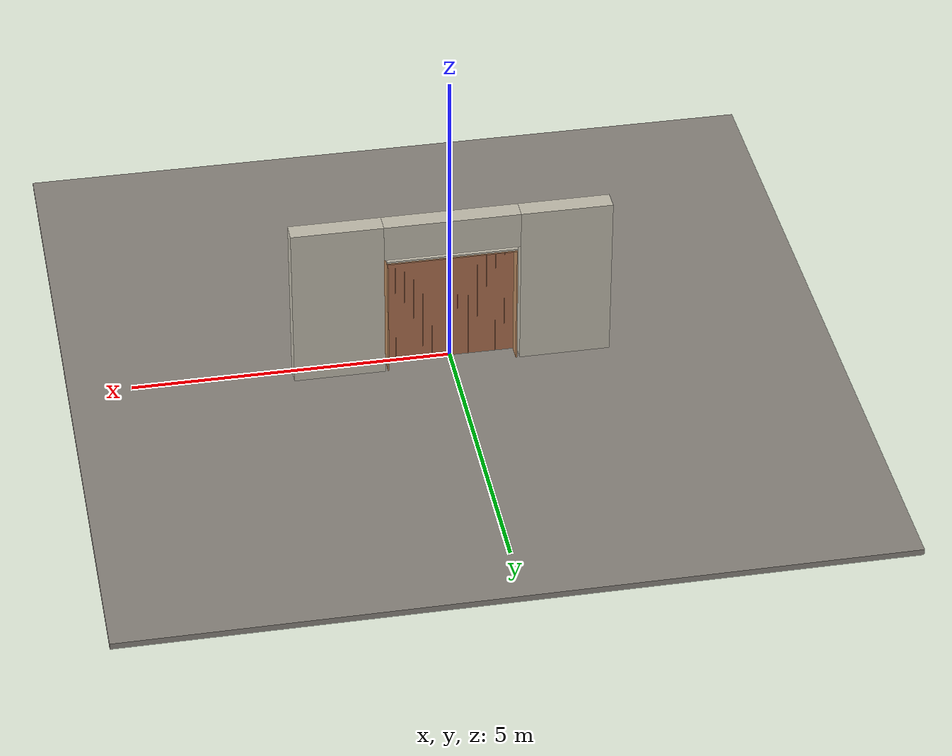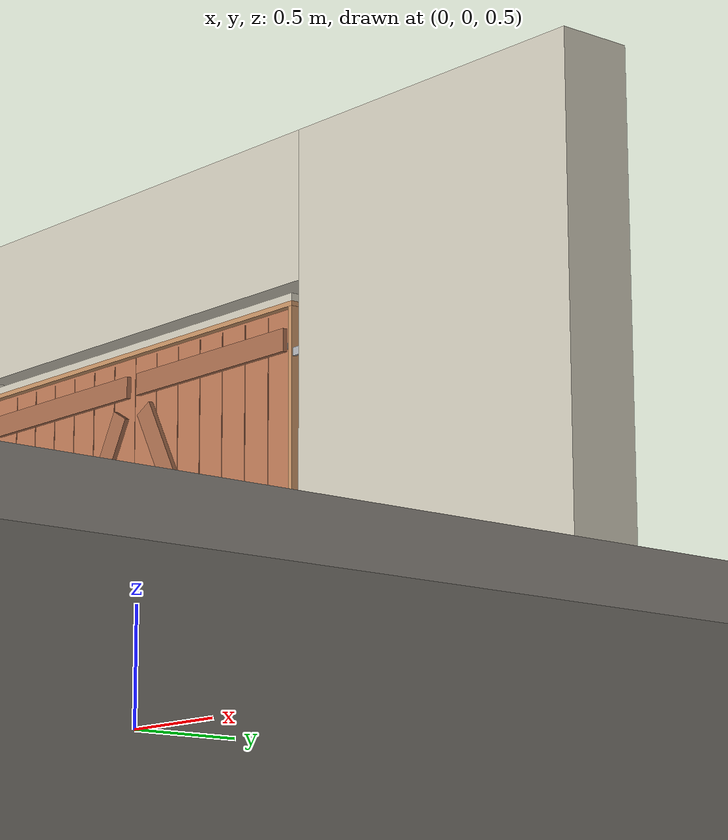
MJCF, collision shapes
<?xml version="1.0" ?>
<mujoco model="db0144_swing_double_full">
  <compiler angle="radian" meshdir="../../hardware" texturedir="../../textures" autolimits="true" inertiafromgeom="false"/>
  <option timestep="0.002" integrator="implicitfast" cone="elliptic" impratio="10" noslip_iterations="3">
    <flag multiccd="enable"/>
  </option>
  <size memory="16M"/>
  <default>
    <geom condim="4" solref="0.005 1" solimp="0.95 0.99 0.001"/>
    <joint solreflimit="0.005 1" solimplimit="0.95 0.99 0.001"/>
    <tendon solreflimit="0.005 1"/>
    <equality solref="0.002 1"/>
  </default>
  <visual>
    <headlight ambient="0.4 0.4 0.4" diffuse="0.7 0.7 0.7" specular="0.2 0.2 0.2"/>
    <quality shadowsize="4096"/>
    <map znear="0.01" zfar="60"/>
  </visual>
  <asset>
    <mesh name="pull_2b47e55ff8" file="pull_2b47e55ff8.obj"/>
    <mesh name="strap_hinge_78d1bbb966" file="strap_hinge_78d1bbb966.obj"/>
    <material name="mat_floor" rgba="0.55 0.53 0.5 1" specular="0.2" shininess="0.15" reflectance="0"/>
    <material name="mat_wall" rgba="0.78 0.76 0.7 1" specular="0.2" shininess="0.1" reflectance="0"/>
    <material name="mat_leaf_a" rgba="0.7 0.45 0.32 1" specular="0.2" shininess="0.4" reflectance="0"/>
    <material name="mat_leaf_a_brace" rgba="0.63 0.405 0.288 1" specular="0.2" shininess="0.2" reflectance="0"/>
    <material name="mat_hinge" rgba="0.65 0.66 0.68 1" specular="0.74" shininess="0.5" reflectance="0.36"/>
    <material name="mat_op_black_matte_metal" rgba="0.05 0.05 0.05 1" specular="0.38" shininess="0.3" reflectance="0.12"/>
    <material name="mat_leaf_b" rgba="0.7 0.45 0.32 1" specular="0.2" shininess="0.4" reflectance="0"/>
    <material name="mat_leaf_b_brace" rgba="0.63 0.405 0.288 1" specular="0.2" shininess="0.2" reflectance="0"/>
    <material name="mat_frame" rgba="0.75 0.55 0.38 1" specular="0.2" shininess="0.45" reflectance="0"/>
    <texture name="skybox" type="skybox" builtin="gradient" rgb1="0.6 0.7 0.85" rgb2="0.9 0.92 0.95" width="256" height="256"/>
  </asset>
  <worldbody>
    <light name="sun" pos="1.5 -2.5 4" dir="-0.3 0.5 -0.8" directional="true" diffuse="0.8 0.8 0.8" specular="0.3 0.3 0.3" castshadow="true"/>
    <light name="fill" pos="-1.5 2.5 3" dir="0.3 -0.5 -0.7" directional="true" diffuse="0.35 0.35 0.4" castshadow="false"/>
    <camera name="robot_view" pos="0 -2.404187 1.709912" xyaxes="1 0 0 0 0.26963 0.962964" fovy="52"/>
    <camera name="far_view" pos="0 2.620188 1.709912" xyaxes="-1 0 0 0 -0.26963 0.962964" fovy="52"/>
    <camera name="iso" pos="-1.909262 -2.002238 2.111862" xyaxes="0.741536 -0.670913 0 0.242917 0.268487 0.932151" fovy="46"/>
    <camera name="detail_handle" pos="0.0735 -0.867 1.33" xyaxes="0.97561 0.219512 0 -0.070934 0.315262 0.94635" fovy="38"/>
    <geom name="floor" type="box" size="6 6 0.05" pos="0 0 -0.05" material="mat_floor" group="0" contype="1" conaffinity="1" friction="0.8 0.005 0.0001" density="2400"/>
    <geom name="wall_left" type="box" size="0.71775 0.15 1.35" pos="-1.78225 0.108 1.35" material="mat_wall" group="0" contype="1" conaffinity="1" friction="0.6 0.005 0.0001" density="800"/>
    <geom name="wall_right" type="box" size="0.71775 0.15 1.35" pos="1.78225 0.108 1.35" material="mat_wall" group="0" contype="1" conaffinity="1" friction="0.6 0.005 0.0001" density="800"/>
    <geom name="wall_header" type="box" size="1.0645 0.15 0.2985" pos="0 0.108 2.4015" material="mat_wall" group="0" contype="1" conaffinity="1" friction="0.6 0.005 0.0001" density="800"/>
    <geom name="hinge_pintle_0" type="cylinder" size="0.008 0.02" pos="-1.0015 -0.029 0.133" material="mat_hinge" group="1" contype="0" conaffinity="0" density="7850"/>
    <geom name="hinge_pintle_1" type="cylinder" size="0.008 0.02" pos="-1.0015 -0.029 1.833" material="mat_hinge" group="1" contype="0" conaffinity="0" density="7850"/>
    <geom name="hinge_pintle_0_2" type="cylinder" size="0.008 0.02" pos="1.0015 -0.029 0.133" material="mat_hinge" group="1" contype="0" conaffinity="0" density="7850"/>
    <geom name="hinge_pintle_1_2" type="cylinder" size="0.008 0.02" pos="1.0015 -0.029 1.833" material="mat_hinge" group="1" contype="0" conaffinity="0" density="7850"/>
    <geom name="jamb_l" type="box" size="0.0095 0.15 1.0065" pos="-1.014 0.108 1.0065" material="mat_frame" group="0" contype="1" conaffinity="1" friction="0.6 0.005 0.0001" density="300"/>
    <geom name="jamb_r" type="box" size="0.0095 0.15 1.0065" pos="1.014 0.108 1.0065" material="mat_frame" group="0" contype="1" conaffinity="1" friction="0.6 0.005 0.0001" density="300"/>
    <geom name="jamb_head" type="box" size="1.0235 0.15 0.0095" pos="0 0.108 2.0225" material="mat_frame" group="0" contype="1" conaffinity="1" friction="0.6 0.005 0.0001" density="300"/>
    <geom name="head_stud" type="box" size="1.0235 0.15 0.015" pos="0 0.108 2.047" material="mat_wall" group="0" contype="1" conaffinity="1" friction="0.6 0.005 0.0001" density="500"/>
    <geom name="hinge_pintle_0_strap_0" type="box" size="0.028 0.0064 0.016" pos="-1.037 -0.029 0.133" material="mat_hinge" group="1" contype="0" conaffinity="0" density="7850"/>
    <geom name="hinge_pintle_0_strap_1" type="box" size="0.028 0.0064 0.016" pos="1.037 -0.029 0.133" material="mat_hinge" group="1" contype="0" conaffinity="0" density="7850"/>
    <geom name="hinge_pintle_1_strap_0" type="box" size="0.028 0.0064 0.016" pos="-1.037 -0.029 1.833" material="mat_hinge" group="1" contype="0" conaffinity="0" density="7850"/>
    <geom name="hinge_pintle_1_strap_1" type="box" size="0.028 0.0064 0.016" pos="1.037 -0.029 1.833" material="mat_hinge" group="1" contype="0" conaffinity="0" density="7850"/>
    <site name="approach_point" pos="0 -1.5 0" quat="1 0 0 0" size="0.05" rgba="0.2 0.9 0.2 0.5" group="4"/>
    <site name="goal_point" pos="0 1.5 0" quat="1 0 0 0" size="0.05" rgba="0.2 0.9 0.2 0.5" group="4"/>
    <site name="door_plane_center" pos="0 0 1.0065" quat="1 0 0 0" size="0.02" rgba="0.2 0.9 0.2 0.5" group="4"/>
    <site name="approach_point_2" pos="0 -1.5 0" quat="1 0 0 0" size="0.05" rgba="0.2 0.9 0.2 0.5" group="4"/>
    <site name="goal_point_2" pos="0 1.5 0" quat="1 0 0 0" size="0.05" rgba="0.2 0.9 0.2 0.5" group="4"/>
    <site name="door_plane_center_2" pos="0 0 1.0065" quat="1 0 0 0" size="0.02" rgba="0.2 0.9 0.2 0.5" group="4"/>
    <site name="approach_point_3" pos="0 -1.5 0" quat="1 0 0 0" size="0.05" rgba="0.2 0.9 0.2 0.5" group="4"/>
    <site name="goal_point_3" pos="0 1.5 0" quat="1 0 0 0" size="0.05" rgba="0.2 0.9 0.2 0.5" group="4"/>
    <site name="door_plane_center_3" pos="0 0 1.0065" quat="1 0 0 0" size="0.02" rgba="0.2 0.9 0.2 0.5" group="4"/>
    <body name="leaf_a" pos="-1.0045 0 0">
      <inertial pos="0.493467 -0.001489 1.0102" mass="31.653573" quat="0.498999 0.501956 -0.498038 0.500997" diaginertia="2.817245528 10.984848013 13.783830513"/>
      <joint name="leaf_a_hinge" type="hinge" axis="0 0 -1" pos="0.003 -0.029 0" limited="true" range="0 1.396263" damping="0.4112" frictionloss="5.808144" armature="0.02"/>
      <geom name="leaf_a_slab" type="box" size="0.5 0.022 1" pos="0.503 0 1.009" material="mat_leaf_a" group="0" contype="1" conaffinity="1" friction="0.35 0.005 0.0001" density="1"/>
      <geom name="leaf_a_plank_gap_1" type="box" size="0.002 0.023 0.99" pos="0.145857 0 1.009" material="mat_leaf_a_brace" group="1" contype="0" conaffinity="0" density="1"/>
      <geom name="leaf_a_plank_gap_2" type="box" size="0.002 0.023 0.99" pos="0.288714 0 1.009" material="mat_leaf_a_brace" group="1" contype="0" conaffinity="0" density="1"/>
      <geom name="leaf_a_plank_gap_3" type="box" size="0.002 0.023 0.99" pos="0.431571 0 1.009" material="mat_leaf_a_brace" group="1" contype="0" conaffinity="0" density="1"/>
      <geom name="leaf_a_plank_gap_4" type="box" size="0.002 0.023 0.99" pos="0.574429 0 1.009" material="mat_leaf_a_brace" group="1" contype="0" conaffinity="0" density="1"/>
      <geom name="leaf_a_plank_gap_5" type="box" size="0.002 0.023 0.99" pos="0.717286 0 1.009" material="mat_leaf_a_brace" group="1" contype="0" conaffinity="0" density="1"/>
      <geom name="leaf_a_plank_gap_6" type="box" size="0.002 0.023 0.99" pos="0.860143 0 1.009" material="mat_leaf_a_brace" group="1" contype="0" conaffinity="0" density="1"/>
      <geom name="leaf_a_batten_12" type="box" size="0.47 0.01 0.045" pos="0.503 -0.032 0.129" material="mat_leaf_a_brace" group="1" contype="0" conaffinity="0" density="1"/>
      <geom name="leaf_a_batten_188" type="box" size="0.47 0.01 0.045" pos="0.503 -0.032 1.889" material="mat_leaf_a_brace" group="1" contype="0" conaffinity="0" density="1"/>
      <geom name="leaf_a_brace_z" type="box" size="0.879747 0.01 0.045" pos="0.503 -0.032 1.009" quat="0.859899 0 -0.510464 0" material="mat_leaf_a_brace" group="1" contype="0" conaffinity="0" density="1"/>
      <geom name="hinge_strap_0" type="mesh" mesh="strap_hinge_78d1bbb966" pos="0.003 -0.025 0.159" material="mat_hinge" group="1" contype="0" conaffinity="0" density="7850"/>
      <geom name="hinge_strap_eye_0" type="cylinder" size="0.011 0.012" pos="0.003 -0.029 0.159" material="mat_hinge" group="1" contype="0" conaffinity="0" density="7850"/>
      <geom name="hinge_strap_neck_0" type="box" size="0.012 0.006 0.006" pos="0.003 -0.027 0.159" material="mat_hinge" group="1" contype="0" conaffinity="0" density="7850"/>
      <geom name="hinge_strap_1" type="mesh" mesh="strap_hinge_78d1bbb966" pos="0.003 -0.025 1.859" material="mat_hinge" group="1" contype="0" conaffinity="0" density="7850"/>
      <geom name="hinge_strap_eye_1" type="cylinder" size="0.011 0.012" pos="0.003 -0.029 1.859" material="mat_hinge" group="1" contype="0" conaffinity="0" density="7850"/>
      <geom name="hinge_strap_neck_1" type="box" size="0.012 0.006 0.006" pos="0.003 -0.027 1.859" material="mat_hinge" group="1" contype="0" conaffinity="0" density="7850"/>
      <geom name="leaf_a_pull_n" type="mesh" mesh="pull_2b47e55ff8" pos="0.898 -0.022 1.05" quat="0.707107 0.707107 0 0" material="mat_op_black_matte_metal" group="1" contype="0" conaffinity="0" density="3000"/>
      <geom name="leaf_a_pull_col_n" type="capsule" size="0.006 0.13" pos="0.898 -0.067 1.05" material="mat_op_black_matte_metal" group="3" contype="1" conaffinity="1" rgba="0.8 0.3 0.3 0.25" friction="0.7 0.01 0.0001" density="3000"/>
      <geom name="leaf_a_pull_p" type="mesh" mesh="pull_2b47e55ff8" pos="0.898 0.022 1.05" quat="-0.707107 0.707107 0 0" material="mat_op_black_matte_metal" group="1" contype="0" conaffinity="0" density="3000"/>
      <geom name="leaf_a_pull_col_p" type="capsule" size="0.006 0.13" pos="0.898 0.067 1.05" material="mat_op_black_matte_metal" group="3" contype="1" conaffinity="1" rgba="0.8 0.3 0.3 0.25" friction="0.7 0.01 0.0001" density="3000"/>
      <site name="leaf_a_pull_grip_n" pos="0.898 -0.067 1.05" quat="1 0 0 0" size="0.012" rgba="0.2 0.9 0.2 0.5" group="4"/>
      <site name="leaf_a_pull_grip_p" pos="0.898 0.067 1.05" quat="1 0 0 0" size="0.012" rgba="0.2 0.9 0.2 0.5" group="4"/>
      <site name="leaf_a_edge_mid" pos="1.003 0 1" quat="1 0 0 0" size="0.02" rgba="0.2 0.9 0.2 0.5" group="4"/>
    </body>
    <body name="leaf_b" pos="1.0045 0 0">
      <inertial pos="-0.481272 -0.001533 1.009" mass="31.546427" quat="0.501498 0.498478 -0.501518 0.498497" diaginertia="2.728500791 11.26259446 13.979335992"/>
      <joint name="leaf_b_hinge" type="hinge" axis="0 0 1" pos="-0.003 -0.029 0" limited="true" range="0 0.001" damping="0.4112" frictionloss="5.808144" armature="0.02"/>
      <geom name="leaf_b_slab" type="box" size="0.5 0.022 1" pos="-0.503 0 1.009" material="mat_leaf_b" group="0" contype="1" conaffinity="1" friction="0.35 0.005 0.0001" density="1"/>
      <geom name="leaf_b_plank_gap_1" type="box" size="0.002 0.023 0.99" pos="-0.145857 0 1.009" material="mat_leaf_b_brace" group="1" contype="0" conaffinity="0" density="1"/>
      <geom name="leaf_b_plank_gap_2" type="box" size="0.002 0.023 0.99" pos="-0.288714 0 1.009" material="mat_leaf_b_brace" group="1" contype="0" conaffinity="0" density="1"/>
      <geom name="leaf_b_plank_gap_3" type="box" size="0.002 0.023 0.99" pos="-0.431571 0 1.009" material="mat_leaf_b_brace" group="1" contype="0" conaffinity="0" density="1"/>
      <geom name="leaf_b_plank_gap_4" type="box" size="0.002 0.023 0.99" pos="-0.574429 0 1.009" material="mat_leaf_b_brace" group="1" contype="0" conaffinity="0" density="1"/>
      <geom name="leaf_b_plank_gap_5" type="box" size="0.002 0.023 0.99" pos="-0.717286 0 1.009" material="mat_leaf_b_brace" group="1" contype="0" conaffinity="0" density="1"/>
      <geom name="leaf_b_plank_gap_6" type="box" size="0.002 0.023 0.99" pos="-0.860143 0 1.009" material="mat_leaf_b_brace" group="1" contype="0" conaffinity="0" density="1"/>
      <geom name="leaf_b_batten_12" type="box" size="0.47 0.01 0.045" pos="-0.503 -0.032 0.129" material="mat_leaf_b_brace" group="1" contype="0" conaffinity="0" density="1"/>
      <geom name="leaf_b_batten_188" type="box" size="0.47 0.01 0.045" pos="-0.503 -0.032 1.889" material="mat_leaf_b_brace" group="1" contype="0" conaffinity="0" density="1"/>
      <geom name="leaf_b_brace_z" type="box" size="0.879747 0.01 0.045" pos="-0.503 -0.032 1.009" quat="0.859899 0 0.510464 0" material="mat_leaf_b_brace" group="1" contype="0" conaffinity="0" density="1"/>
      <geom name="hinge_strap_0_2" type="mesh" mesh="strap_hinge_78d1bbb966" pos="-0.003 -0.025 0.159" quat="0 0 0 1" material="mat_hinge" group="1" contype="0" conaffinity="0" density="7850"/>
      <geom name="hinge_strap_eye_0_2" type="cylinder" size="0.011 0.012" pos="-0.003 -0.029 0.159" material="mat_hinge" group="1" contype="0" conaffinity="0" density="7850"/>
      <geom name="hinge_strap_neck_0_2" type="box" size="0.012 0.006 0.006" pos="-0.003 -0.027 0.159" material="mat_hinge" group="1" contype="0" conaffinity="0" density="7850"/>
      <geom name="hinge_strap_1_2" type="mesh" mesh="strap_hinge_78d1bbb966" pos="-0.003 -0.025 1.859" quat="0 0 0 1" material="mat_hinge" group="1" contype="0" conaffinity="0" density="7850"/>
      <geom name="hinge_strap_eye_1_2" type="cylinder" size="0.011 0.012" pos="-0.003 -0.029 1.859" material="mat_hinge" group="1" contype="0" conaffinity="0" density="7850"/>
      <geom name="hinge_strap_neck_1_2" type="box" size="0.012 0.006 0.006" pos="-0.003 -0.027 1.859" material="mat_hinge" group="1" contype="0" conaffinity="0" density="7850"/>
      <site name="leaf_b_edge_mid" pos="-1.003 0 1" quat="1 0 0 0" size="0.02" rgba="0.2 0.9 0.2 0.5" group="4"/>
    </body>
  </worldbody>
  <sensor>
    <jointpos name="leaf_a_hinge_pos" joint="leaf_a_hinge"/>
    <jointvel name="leaf_a_hinge_vel" joint="leaf_a_hinge"/>
    <jointpos name="leaf_b_hinge_pos" joint="leaf_b_hinge"/>
    <jointvel name="leaf_b_hinge_vel" joint="leaf_b_hinge"/>
  </sensor>
</mujoco>
